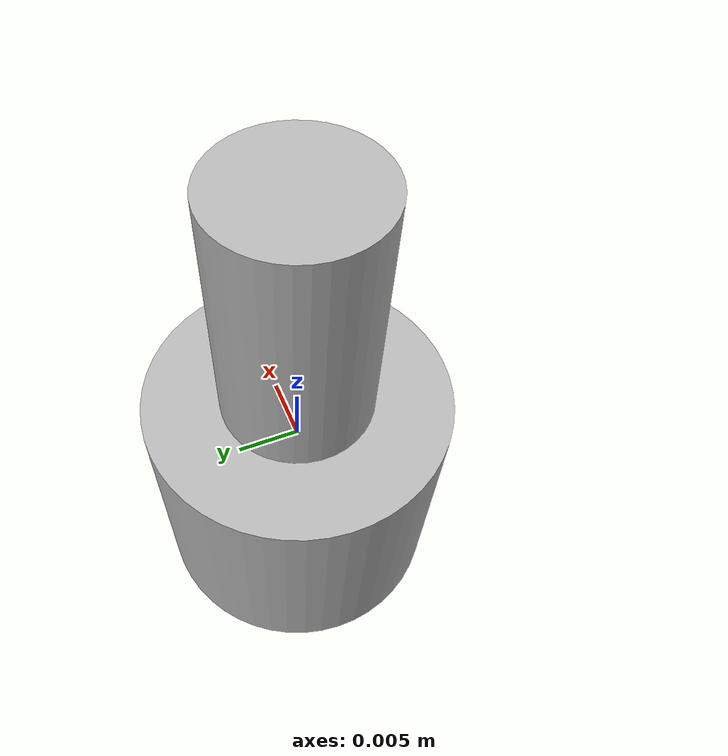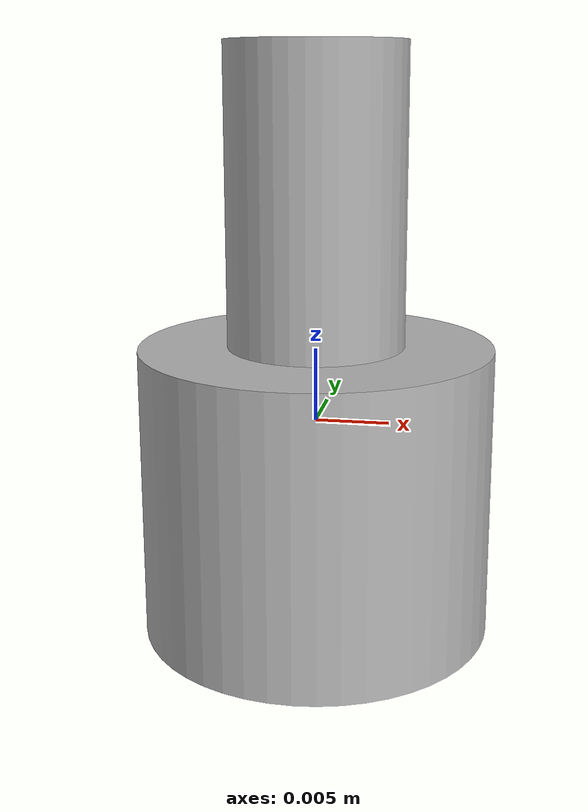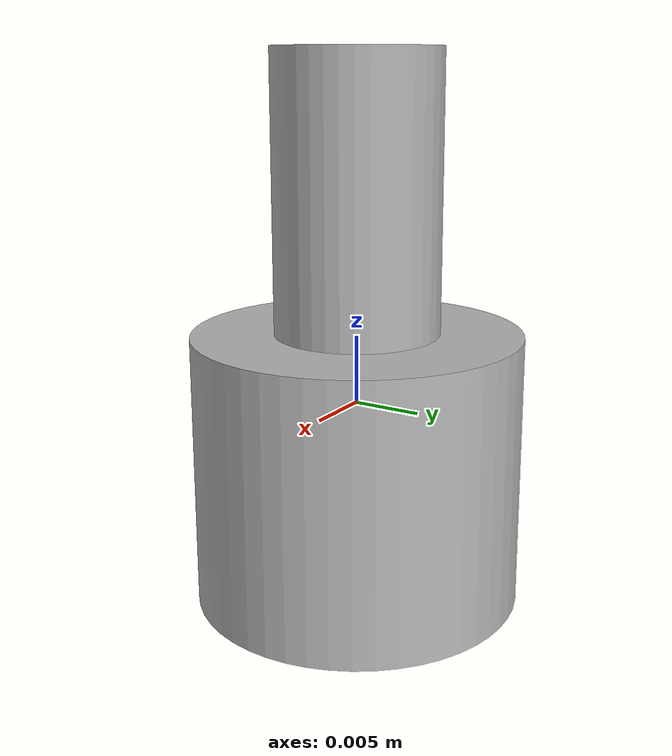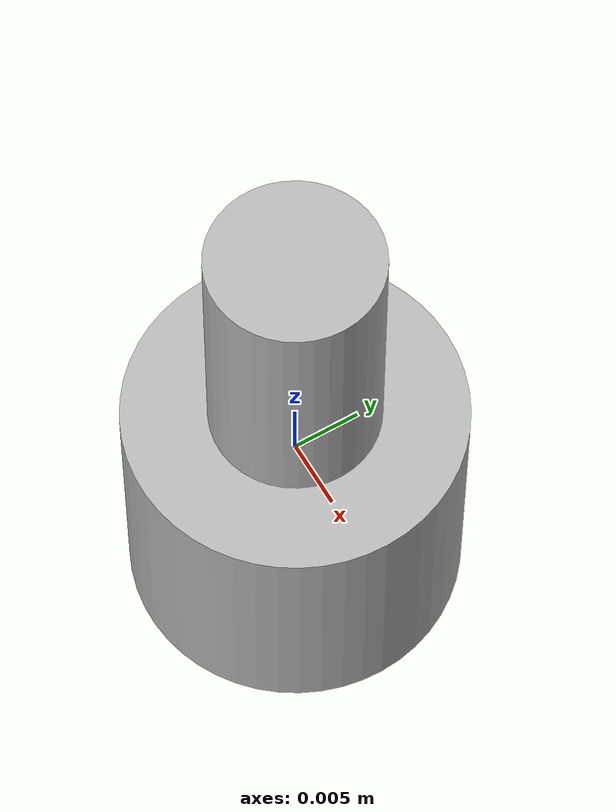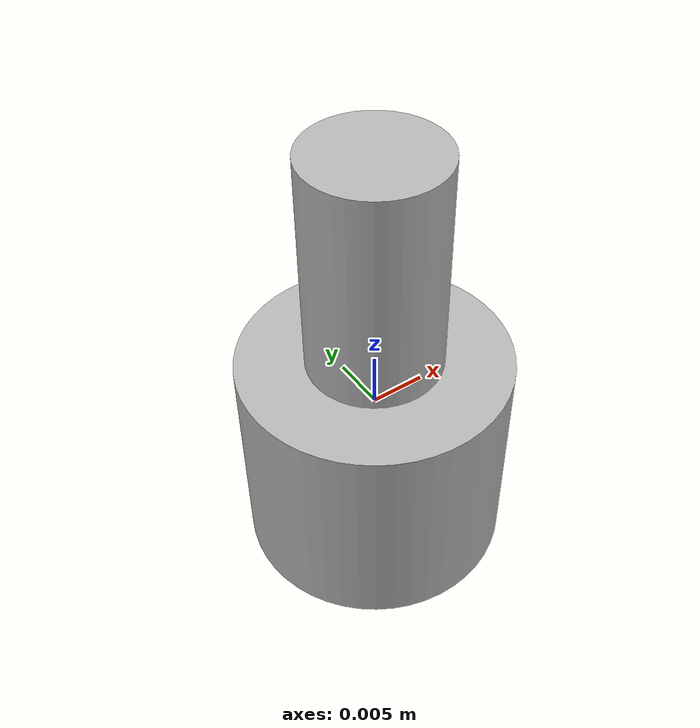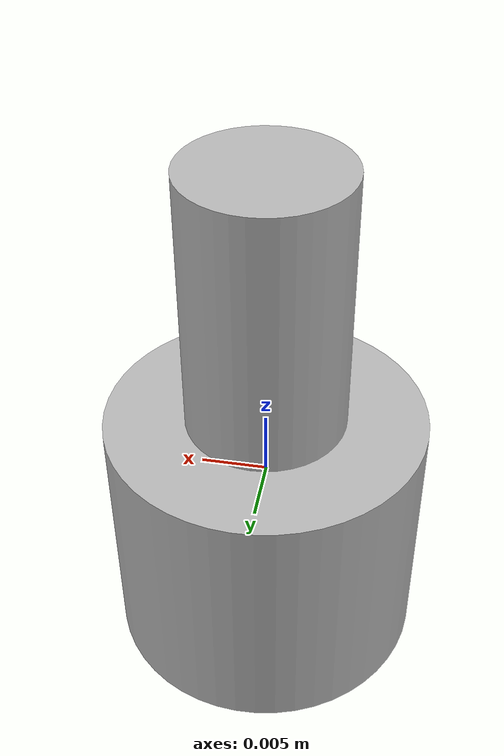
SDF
<?xml version="1.0" ?>
<sdf version="1.6">
  <model name="4)Motor">
    <static>true</static>
    <link name="link">
      <collision name="collision">
        <geometry>
          <mesh>
            <scale>0.001 0.001 0.001</scale>
            <uri>model://4)Motor/4)Motor.stl</uri>
          </mesh>
        </geometry>
      </collision>
      <visual name="visual">
        <geometry>
          <mesh>
            <scale>0.001 0.001 0.001</scale>
            <uri>model://4)Motor/4)Motor.dae</uri>
          </mesh>
        </geometry>
      </visual>
    </link>
  </model>
</sdf>
